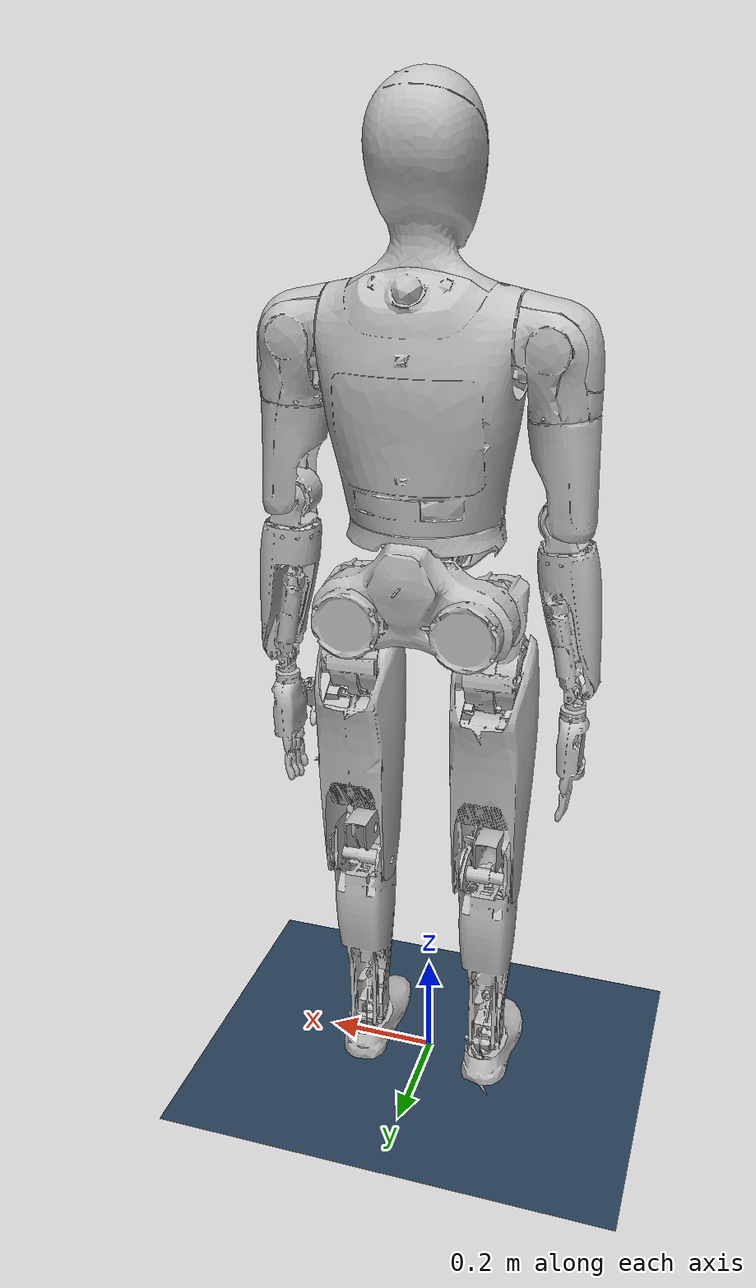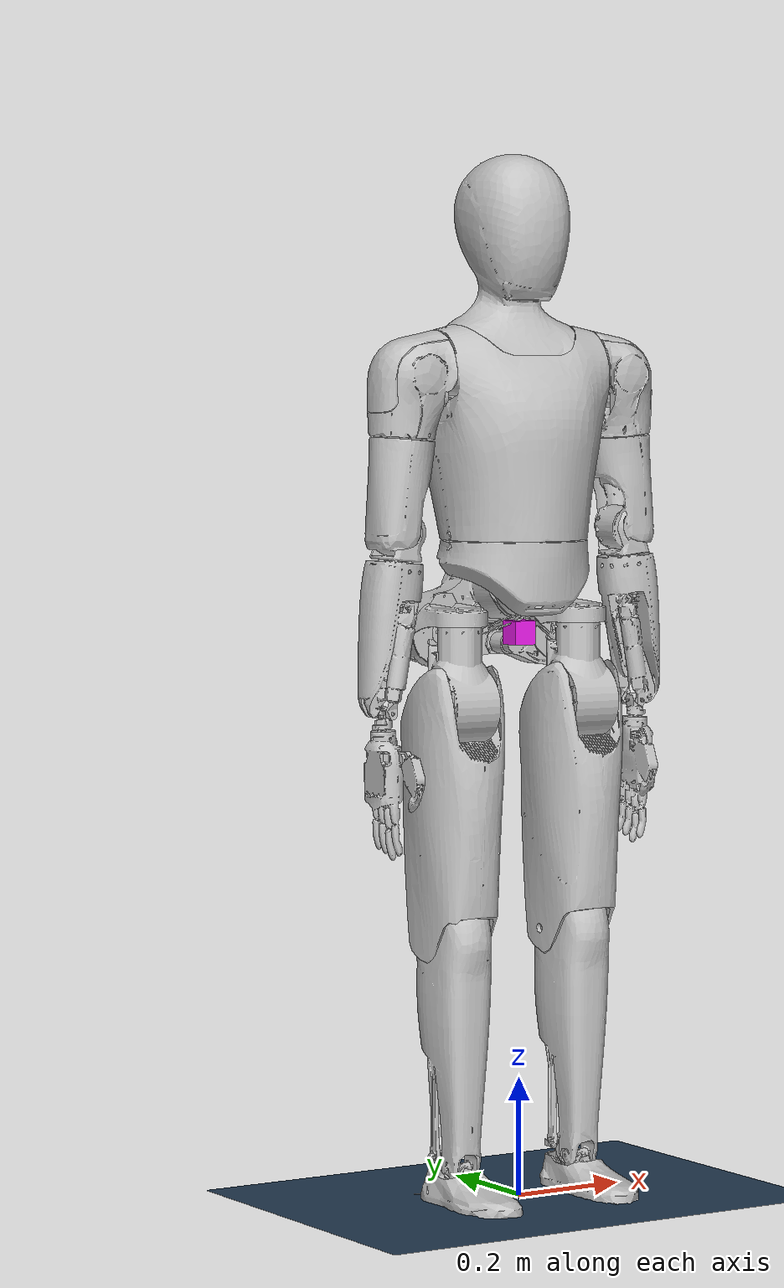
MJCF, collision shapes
<mujoco model="Magicbot-Gen1">
    <compiler angle="radian" meshdir="../meshes/" />
    <size njmax="500" nconmax="100" />
  <asset>
        <mesh name="pelvis" file="pelvis.STL" />
        <mesh name="LINK_HIP_ROLL_L" file="LINK_HIP_ROLL_L.STL" />
        <mesh name="LINK_HIP_YAW_L" file="LINK_HIP_YAW_L.STL" />
        <mesh name="LINK_HIP_PITCH_L" file="LINK_HIP_PITCH_L.STL" />
        <mesh name="LINK_KNEE_PITCH_L" file="LINK_KNEE_PITCH_L.STL" />
        <mesh name="LINK_ANKLE_PITCH_L" file="LINK_ANKLE_PITCH_L.STL" />
        <mesh name="LINK_ANKLE_ROLL_L" file="LINK_ANKLE_ROLL_L.STL" />
        <mesh name="LINK_HIP_ROLL_R" file="LINK_HIP_ROLL_R.STL" />
        <mesh name="LINK_HIP_YAW_R" file="LINK_HIP_YAW_R.STL" />
        <mesh name="LINK_HIP_PITCH_R" file="LINK_HIP_PITCH_R.STL" />
        <mesh name="LINK_KNEE_PITCH_R" file="LINK_KNEE_PITCH_R.STL" />
        <mesh name="LINK_ANKLE_PITCH_R" file="LINK_ANKLE_PITCH_R.STL" />
        <mesh name="LINK_ANKLE_ROLL_R" file="LINK_ANKLE_ROLL_R.STL" />
        <mesh name="link_wr" file="link_wr.STL" />
        <mesh name="link_wy" file="link_wy.STL" />
        <mesh name="link_hy" file="link_hy.STL" />
        <mesh name="link_hp" file="link_hp.STL" />
        <mesh name="link_la1" file="link_la1.STL" />
        <mesh name="link_la2" file="link_la2.STL" />
        <mesh name="link_la3" file="link_la3.STL" />
        <mesh name="link_la4" file="link_la4.STL" />
        <mesh name="link_la5" file="link_la5.STL" />
        <mesh name="link_la6" file="link_la6.STL" />
        <mesh name="link_la7" file="link_la7.STL" />
        <mesh name="link_ra1" file="link_ra1.STL" />
        <mesh name="link_ra2" file="link_ra2.STL" />
        <mesh name="link_ra3" file="link_ra3.STL" />
        <mesh name="link_ra4" file="link_ra4.STL" />
        <mesh name="link_ra5" file="link_ra5.STL" />
        <mesh name="link_ra6" file="link_ra6.STL" />
        <mesh name="link_ra7" file="link_ra7.STL" />
        <mesh name="logo_link" file="logo_link.STL" scale="1.5 1.5 1.5"/>
        <texture type="2d" name="groundplane" builtin="checker" mark="edge" rgb1="0.2 0.3 0.4" rgb2="0.1 0.2 0.3" markrgb="1 1 1" width="300" height="300"/>
        <material name="MatGnd" texture="groundplane" texuniform="true" texrepeat="5 5" reflectance="0.2"/>
  </asset>

    <option timestep="0.002"/>
    <visual>
        <map fogstart="2" fogend="30" force="0.02"/>
        <headlight diffuse="0.6 0.6 0.6" ambient="0.3 0.3 0.3" specular="0 0 0"/>
        <rgba haze="0.15 0.25 0.35 1" contactforce="1 0 0 0.8" com="1 0 0 0.8"/>
        <scale forcewidth="0.05" contactwidth="0.1" contactheight="0.1"/>
    </visual>
    <default>
        <site type="sphere" size="0.005" rgba="1 0 0 1"/>
        <joint damping="20"/>
        <geom contype="0" conaffinity="1" friction="1 1 1" margin="0.001" type="mesh" solref="-500 -800" />
    </default>

  <worldbody>

    <light name="spotlight" mode="trackcom" target="pelvis" pos="0 -0.2 2" dir="0 0 -1" directional="true" cutoff="30"/>
    <geom name="ground" type="plane" pos="0 0 0" friction="1 1 5" size="15 15 1" conaffinity="1" contype="1" material="MatGnd"/>

    <body name="pelvis" pos="0 0 0.95" quat="0.7071 0 0 -0.7071">
      <camera name="track" pos="0 -3 1" zaxis="0 -1 0.5" mode="track"/>
      <freejoint/>
      <inertial pos="-0.0867525 9.19e-06 0.012959" quat="0.670588 0.670525 0.224397 -0.224395" mass="6.32181" diaginertia="0.0866265 0.0823034 0.0198841"/>
      <geom type="mesh" contype="0" conaffinity="0" group="1" rgba="0.75294 0.75294 0.75294 1" mesh="pelvis"/>
      <geom type="mesh" rgba="0.75294 0.75294 0.75294 1" mesh="pelvis"/>
      <body name="LINK_HIP_ROLL_L" pos="0 0.1175 0">
        <inertial pos="-0.0307534 -3.55e-06 0.0214845" quat="2.72134e-06 0.528952 -2.59562e-05 0.848652" mass="0.47382" diaginertia="0.000912726 0.0007199 0.000528614"/>
        <joint name="JOINT_HIP_ROLL_L" pos="0 0 0" axis="1 0 0" limited="true" range="-0.349 0.523"/>
        <geom type="mesh" contype="0" conaffinity="0" group="1" rgba="0.75294 0.75294 0.75294 1" mesh="LINK_HIP_ROLL_L"/>
        <geom type="mesh" rgba="0.75294 0.75294 0.75294 1" mesh="LINK_HIP_ROLL_L"/>
        <body name="LINK_HIP_YAW_L" pos="0 0 0">
          <inertial pos="-0.00106248 -0.00273398 -0.0817245" quat="0.514355 0.484575 0.501153 0.499472" mass="3.38318" diaginertia="0.00742219 0.00742219 0.00742219"/>
          <joint name="JOINT_HIP_YAW_L" pos="0 0 0" axis="0 0 1" limited="true" range="-0.262 0.523"/>
          <geom type="mesh" contype="0" conaffinity="0" group="1" rgba="0.75294 0.75294 0.75294 1" mesh="LINK_HIP_YAW_L"/>
          <geom type="mesh" rgba="0.75294 0.75294 0.75294 1" mesh="LINK_HIP_YAW_L"/>
          <body name="LINK_HIP_PITCH_L" pos="0 0 -0.118">
            <inertial pos="-0.0129337 -0.00410579 -0.155921" quat="0.713768 0.0111618 0.0128312 0.700176" mass="5.04878" diaginertia="0.0569722 0.0545631 0.01567"/>
            <joint name="JOINT_HIP_PITCH_L" pos="0 0 0" axis="0 1 0" limited="true" range="-2.093 0.698"/>
            <geom type="mesh" contype="0" conaffinity="0" group="1" rgba="0.75294 0.75294 0.75294 1" mesh="LINK_HIP_PITCH_L"/>
            <geom type="mesh" rgba="0.75294 0.75294 0.75294 1" mesh="LINK_HIP_PITCH_L"/>
            <body name="LINK_KNEE_PITCH_L" pos="-0.03295 0 -0.3875">
              <inertial pos="0.0288334 0.00126447 -0.12048" quat="0.728342 -0.0188859 -0.0118525 0.684851" mass="3.37617" diaginertia="0.0487493 0.0484897 0.00486254"/>
              <joint name="JOINT_KNEE_PITCH_L" pos="0 0 0" axis="0 1 0" limited="true" range="0 2.617"/>
              <geom type="mesh" contype="0" conaffinity="0" group="1" rgba="0.75294 0.75294 0.75294 1" mesh="LINK_KNEE_PITCH_L"/>
              <geom type="mesh" rgba="0.75294 0.75294 0.75294 1" mesh="LINK_KNEE_PITCH_L"/>
              <body name="LINK_ANKLE_PITCH_L" pos="0.035056 0 -0.3867">
                <inertial pos="0 0 -0.00869504" quat="0.5 0.5 0.5 0.5" mass="0.0724143" diaginertia="1.156e-05 1.127e-05 1.073e-05"/>
                <joint name="JOINT_ANKLE_PITCH_L" pos="0 0 0" axis="0 1 0" limited="true" range="-1.308 0.523"/>
                <geom type="mesh" contype="0" conaffinity="0" group="1" rgba="0.75294 0.75294 0.75294 1" mesh="LINK_ANKLE_PITCH_L"/>
                <geom type="mesh" rgba="0.75294 0.75294 0.75294 1" mesh="LINK_ANKLE_PITCH_L"/>
                <body name="LINK_ANKLE_ROLL_L" pos="0 0 -0.01">
                  <inertial pos="0.0181629 0.00118755 -0.0261397" quat="0.0419233 0.749639 0.0481793 0.658758" mass="0.801308" diaginertia="0.0038524 0.00377511 0.000670562"/>
                  <joint name="JOINT_ANKLE_ROLL_L" pos="0 0 0" axis="1 0 0" limited="true" range="-0.349 0.349"/>
                  <geom type="mesh" contype="1" conaffinity="0" group="1" density="0" rgba="0.75294 0.75294 0.75294 1" mesh="LINK_ANKLE_ROLL_L" />
                  <geom type="mesh" rgba="0.75294 0.75294 0.75294 1" mesh="LINK_ANKLE_ROLL_L" />
                </body>
              </body>
            </body>
          </body>
        </body>
      </body>
      <body name="LINK_HIP_ROLL_R" pos="0 -0.1175 0">
        <inertial pos="-0.0307534 -3.59e-06 0.0214845" quat="2.72134e-06 0.528952 -2.59562e-05 0.848652" mass="0.473833" diaginertia="0.000912726 0.0007199 0.000528614"/>
        <joint name="JOINT_HIP_ROLL_R" pos="0 0 0" axis="1 0 0" limited="true" range="-0.523 0.349"/>
        <geom type="mesh" contype="0" conaffinity="0" group="1" rgba="0.75294 0.75294 0.75294 1" mesh="LINK_HIP_ROLL_R"/>
        <geom type="mesh" rgba="0.75294 0.75294 0.75294 1" mesh="LINK_HIP_ROLL_R"/>
        <body name="LINK_HIP_YAW_R" pos="0 0 0">
          <inertial pos="-0.00100961 0.00273909 -0.081705" quat="0.712797 0.0121854 -0.00794719 0.70122" mass="3.38317" diaginertia="0.0158115 0.0144407 0.00468985"/>
          <joint name="JOINT_HIP_YAW_R" pos="0 0 0" axis="0 0 1" limited="true" range="-0.523 0.262"/>
          <geom type="mesh" contype="0" conaffinity="0" group="1" rgba="0.75294 0.75294 0.75294 1" mesh="LINK_HIP_YAW_R"/>
          <geom type="mesh" rgba="0.75294 0.75294 0.75294 1" mesh="LINK_HIP_YAW_R"/>
          <body name="LINK_HIP_PITCH_R" pos="0 0 -0.118">
            <inertial pos="-0.0116084 0.00408093 -0.155398" quat="0.669095 0.00313739 0.00263166 0.743166" mass="5.04802" diaginertia="0.0553991 0.0538462 0.0147466"/>
            <joint name="JOINT_HIP_PITCH_R" pos="0 0 0" axis="0 1 0" limited="true" range="-2.093 0.698"/>
            <geom type="mesh" contype="0" conaffinity="0" group="1" rgba="0.75294 0.75294 0.75294 1" mesh="LINK_HIP_PITCH_R"/>
            <geom type="mesh" rgba="0.75294 0.75294 0.75294 1" mesh="LINK_HIP_PITCH_R"/>
            <body name="LINK_KNEE_PITCH_R" pos="-0.032951 0 -0.3875">
              <inertial pos="0.0288152 -0.00126424 -0.120528" quat="0.682853 -0.0118312 -0.0188198 0.730218" mass="3.37419" diaginertia="0.0487347 0.0484735 0.00486017"/>
              <joint name="JOINT_KNEE_PITCH_R" pos="0 0 0" axis="0 1 0" limited="true" range="0 2.617"/>
              <geom type="mesh" contype="0" conaffinity="0" group="1" rgba="0.75294 0.75294 0.75294 1" mesh="LINK_KNEE_PITCH_R"/>
              <geom type="mesh" rgba="0.75294 0.75294 0.75294 1" mesh="LINK_KNEE_PITCH_R"/>
              <body name="LINK_ANKLE_PITCH_R" pos="0.035003 0 -0.3867">
                <inertial pos="-1.27e-06 -4.51e-06 -0.00869518" quat="0.5 0.5 0.5 0.5" mass="0.0724143" diaginertia="1.156e-05 1.127e-05 1.073e-05"/>
                <joint name="JOINT_ANKLE_PITCH_R" pos="0 0 0" axis="0 1 0" limited="true" range="-1.308 0.523"/>
                <geom type="mesh" contype="0" conaffinity="0" group="1" rgba="0.75294 0.75294 0.75294 1" mesh="LINK_ANKLE_PITCH_R"/>
                <geom type="mesh" rgba="0.75294 0.75294 0.75294 1" mesh="LINK_ANKLE_PITCH_R"/>
                <body name="LINK_ANKLE_ROLL_R" pos="0 0 -0.01" quat="1 2.0446e-05 7.4275e-05 -1.51863e-09">
                  <inertial pos="0.0173464 -0.00124434 -0.0259356" quat="-0.046951 0.749545 -0.0530177 0.658154" mass="0.794245" diaginertia="0.00374197 0.00366589 0.000665126"/>
                  <joint name="JOINT_ANKLE_ROLL_R" pos="0 0 0" axis="1 0 0" limited="true" range="-0.349 0.349"/>
                  <geom type="mesh" contype="1" conaffinity="0" group="1" density="0" rgba="0.75294 0.75294 0.75294 1" mesh="LINK_ANKLE_ROLL_R" />
                  <geom type="mesh" rgba="0.75294 0.75294 0.75294 1" mesh="LINK_ANKLE_ROLL_R" />
                </body>
              </body>
            </body>
          </body>
        </body>
      </body>
      <body name="link_wr" pos="-0.016 0 0.083">
        <inertial pos="-0.0147638 -5.405e-05 0.0105922" quat="-0.000109426 0.683045 -0.00243717 0.730372" mass="2.52448" diaginertia="0.0121018 0.0104746 0.00532311"/>
        <joint name="joint_wr" pos="0 0 0" axis="1 0 0" limited="true" range="-0.349 0.349"/>
        <geom type="mesh" contype="0" conaffinity="0" group="1" rgba="0.75294 0.75294 0.75294 1" mesh="link_wr"/>
        <geom type="mesh" rgba="0.75294 0.75294 0.75294 1" mesh="link_wr"/>
        <body name="link_wy" pos="0 0 0">
          <inertial pos="-0.0166852 -0.00085362 0.246658" quat="0.999581 -0.0157744 -0.0242877 -0.000132519" mass="15.0078" diaginertia="0.200739 0.152509 0.107974"/>
          <joint name="joint_wy" pos="0 0 0" axis="0 0 1" limited="true" range="-1.57 1.57"/>
          <geom type="mesh" contype="0" conaffinity="0" group="1" rgba="0.75294 0.75294 0.75294 1" mesh="link_wy"/>
          <geom type="mesh" rgba="0.75294 0.75294 0.75294 1" mesh="link_wy"/>
          <body name="logo_link" pos="-0.042 0 -0.272">
            <geom type="mesh" mesh="logo_link" rgba="0.5 0.5 0.5 1" contype="0" conaffinity="0"/>
          </body>
          <body name="link_hy" pos="-0.0059657 0 0.50108">
            <inertial pos="-0.00331412 0.00160025 -0.0664507" quat="0.661612 -0.0307511 -0.00798009 0.749173" mass="1.30579" diaginertia="0.00617406 0.00611049 0.000873257"/>
            <joint name="joint_hy" pos="0 0 0" axis="0 0 1" limited="true" range="-1.047 1.047"/>
            <geom type="mesh" contype="0" conaffinity="0" group="1" rgba="0.75294 0.75294 0.75294 1" mesh="link_hy"/>
            <geom type="mesh" rgba="0.75294 0.75294 0.75294 1" mesh="link_hy"/>
            <body name="link_hp" pos="-0.0065 2.3658e-05 0">
              <inertial pos="0.0195701 0.00043733 0.0836034" quat="0.702022 -0.158171 -0.151978 0.677532" mass="1.75103" diaginertia="0.0100446 0.0088459 0.00620297"/>
              <joint name="joint_hp" pos="0 0 0" axis="0 1 0" limited="true" range="-0.349 0.349"/>
              <geom type="mesh" contype="0" conaffinity="0" group="1" rgba="0.75294 0.75294 0.75294 1" mesh="link_hp"/>
              <geom type="mesh" rgba="0.75294 0.75294 0.75294 1" mesh="link_hp"/>
            </body>
          </body>
          <body name="link_la1" pos="-0.0078982 0.19799 0.346">
            <inertial pos="-0.0018413 -0.0024301 -0.00037468" quat="0.15371 0.690422 0.16086 0.688342" mass="1.4531" diaginertia="0.0020206 0.00193611 0.00186519" />
            <joint name="joint_la1" pos="0 0 0" axis="0 1 0" limited="true" range="-2.756 2.756" />
            <geom type="mesh" contype="0" conaffinity="0" group="1" rgba="0.75294 0.75294 0.75294 1" mesh="link_la1" />
            <geom type="mesh" rgba="0.75294 0.75294 0.75294 1" mesh="link_la1" />
            <body name="link_la2" pos="0 0 0">
              <inertial pos="-0.00019279 0.0045265 -0.044564" quat="0.704732 0.0647842 -0.0936079 0.700281" mass="0.53748" diaginertia="0.00256775 0.00180145 0.0016529" />
              <joint name="joint_la2" pos="0 0 0" axis="1 0 0" limited="true" range="-0.262 2.878" />
              <geom type="mesh" contype="0" conaffinity="0" group="1" rgba="0.75294 0.75294 0.75294 1" mesh="link_la2" />
              <geom type="mesh" rgba="0.75294 0.75294 0.75294 1" mesh="link_la2" />
              <body name="link_la3" pos="0 0.015686 -0.10553" quat="0.999048 0.0436197 0 0">
                <inertial pos="-0.0018654 -0.00021946 -0.087638" quat="0.44763 0.00922475 0.0230775 0.893874" mass="1.784" diaginertia="0.00747334 0.00745552 0.00171994" />
                <joint name="joint_la3" pos="0 0 0" axis="0 0 1" limited="true" range="-2.617 2.617" />
                <geom type="mesh" contype="0" conaffinity="0" group="1" rgba="0.75294 0.75294 0.75294 1" mesh="link_la3" />
                <geom type="mesh" rgba="0.75294 0.75294 0.75294 1" mesh="link_la3" />
                <body name="link_la4" pos="-0.00074295 -0.0049956 -0.15199" quat="1 -9.13831e-05 7.78022e-05 -2.43794e-05">
                  <inertial pos="-0.0013088 0.00091464 0.02382" quat="0.466806 0.512617 0.540895 0.476181" mass="0.17421" diaginertia="0.000270023 0.000224184 0.000140403" />
                  <joint name="joint_la4" pos="0 0 0" axis="1 0 0" limited="true" range="-2.215 0.174" />
                  <geom type="mesh" contype="0" conaffinity="0" group="1" rgba="0.75294 0.75294 0.75294 1" mesh="link_la4" />
                  <geom type="mesh" rgba="0.75294 0.75294 0.75294 1" mesh="link_la4" />
                  <body name="link_la5" pos="0 0 0">
                    <inertial pos="3.761e-05 -0.00071947 -0.15533" quat="0.707151 0.00668923 -0.00641691 0.707001" mass="1.9293" diaginertia="0.0127798 0.012532 0.00174851" />
                    <joint name="joint_la5" pos="0 0 0" axis="0 0 1" limited="true" range="-2.913 2.913" />
                    <geom type="mesh" contype="0" conaffinity="0" group="1" rgba="0.75294 0.75294 0.75294 1" mesh="link_la5" />
                    <geom type="mesh" rgba="0.75294 0.75294 0.75294 1" mesh="link_la5" />
                    <body name="link_la6" pos="0 0.02371 -0.29785">
                      <inertial pos="0 -0.010485 -1.319e-05" quat="0.5 0.5 -0.5 0.5" mass="0.022425" diaginertia="2.68e-06 2.56e-06 4.1e-07" />
                      <joint name="joint_la6" pos="0 0 0" axis="1 0 0" limited="true" range="-1.099 0.855" />
                      <geom type="mesh" contype="0" conaffinity="0" group="1" rgba="0.75294 0.75294 0.75294 1" mesh="link_la6" />
                      <geom type="mesh" rgba="0.75294 0.75294 0.75294 1" mesh="link_la6" />
                      <body name="link_la7" pos="0 0 0">
                        <inertial pos="0.0085985 -0.033148 -0.099979" quat="0.759901 -0.0561444 0.0132593 0.647474" mass="0.69533" diaginertia="0.00276053 0.0023263 0.000593638" />
                        <joint name="joint_la7" pos="0 0 0" axis="0 1 0" limited="true" range="-0.454 0.454" />
                        <geom type="mesh" contype="0" conaffinity="0" group="1" rgba="0.75294 0.75294 0.75294 1" mesh="link_la7" />
                        <geom type="mesh" rgba="0.75294 0.75294 0.75294 1" mesh="link_la7" />
                      </body>
                    </body>
                  </body>
                </body>
              </body>
            </body>
          </body>
          <body name="link_ra1" pos="-0.0079 -0.198 0.346">
            <inertial pos="0.0018431 0.0024301 -0.00037468" quat="-0.16086 0.688342 -0.15371 0.690422" mass="1.4531" diaginertia="0.0020206 0.00193611 0.00186519" />
            <joint name="joint_ra1" pos="0 0 0" axis="0 1 0" limited="true" range="-2.756 2.756" />
            <geom type="mesh" contype="0" conaffinity="0" group="1" rgba="0.75294 0.75294 0.75294 1" mesh="link_ra1" />
            <geom type="mesh" rgba="0.75294 0.75294 0.75294 1" mesh="link_ra1" />
            <body name="link_ra2" pos="0 0 0">
              <inertial pos="0.00019469 -0.0045264 -0.044564" quat="0.704725 -0.0648014 0.0935909 0.700289" mass="0.53748" diaginertia="0.00256775 0.00180145 0.00165291" />
              <joint name="joint_ra2" pos="0 0 0" axis="1 0 0" limited="true" range="-2.878 0.262" />
              <geom type="mesh" contype="0" conaffinity="0" group="1" rgba="0.75294 0.75294 0.75294 1" mesh="link_ra2" />
              <geom type="mesh" rgba="0.75294 0.75294 0.75294 1" mesh="link_ra2" />
              <body name="link_ra3" pos="1.2039e-05 -0.015686 -0.10553" quat="0.999048 -0.0436197 0 0">
                <inertial pos="0.0018654 0.00021946 -0.087638" quat="0.44763 -0.00922475 -0.0230775 0.893874" mass="1.784" diaginertia="0.00747334 0.00745552 0.00171994" />
                <joint name="joint_ra3" pos="0 0 0" axis="0 0 1" limited="true" range="-2.617 2.617" />
                <geom type="mesh" contype="0" conaffinity="0" group="1" rgba="0.75294 0.75294 0.75294 1" mesh="link_ra3" />
                <geom type="mesh" rgba="0.75294 0.75294 0.75294 1" mesh="link_ra3" />
                <body name="link_ra4" pos="0.00074295 0.0049956 -0.15199" quat="1 9.13831e-05 -7.78022e-05 -2.43794e-05">
                  <inertial pos="0.0013088 -0.00091464 -0.02382" quat="0.512617 0.466806 0.476181 0.540895" mass="0.17421" diaginertia="0.000270023 0.000224184 0.000140403" />
                  <joint name="joint_ra4" pos="0 0 0" axis="1 0 0" limited="true" range="-0.174 2.215" />
                  <geom type="mesh" contype="0" conaffinity="0" group="1" rgba="0.75294 0.75294 0.75294 1" mesh="link_ra4" />
                  <geom type="mesh" rgba="0.75294 0.75294 0.75294 1" mesh="link_ra4" />
                  <body name="link_ra5" pos="0 0 0">
                    <inertial pos="-3.761e-05 0.00071947 -0.15533" quat="0.707151 -0.00668923 0.00641691 0.707001" mass="1.9293" diaginertia="0.0127798 0.012532 0.00174851" />
                    <joint name="joint_ra5" pos="0 0 0" axis="0 0 1" limited="true" range="-2.913 2.913" />
                    <geom type="mesh" contype="0" conaffinity="0" group="1" rgba="0.75294 0.75294 0.75294 1" mesh="link_ra5" />
                    <geom type="mesh" rgba="0.75294 0.75294 0.75294 1" mesh="link_ra5" />
                    <body name="link_ra6" pos="0 -0.02371 -0.29785">
                      <inertial pos="0 0.010485 -1.319e-05" quat="0.5 0.5 -0.5 0.5" mass="0.022425" diaginertia="2.68e-06 2.56e-06 4.1e-07" />
                      <joint name="joint_ra6" pos="0 0 0" axis="1 0 0" limited="true" range="-0.855 1.099" />
                      <geom type="mesh" contype="0" conaffinity="0" group="1" rgba="0.75294 0.75294 0.75294 1" mesh="link_ra6" />
                      <geom type="mesh" rgba="0.75294 0.75294 0.75294 1" mesh="link_ra6" />
                      <body name="link_ra7" pos="0 0 0">
                        <inertial pos="0.0086988 0.034138 -0.10144" quat="0.650361 0.0146057 -0.05436 0.757537" mass="0.69533" diaginertia="0.00282555 0.00237836 0.000592839" />
                        <joint name="joint_ra7" pos="0 0 0" axis="0 1 0" limited="true" range="-0.454 0.454" />
                        <geom type="mesh" contype="0" conaffinity="0" group="1" rgba="0.75294 0.75294 0.75294 1" mesh="link_ra7" />
                        <geom type="mesh" rgba="0.75294 0.75294 0.75294 1" mesh="link_ra7" />
                      </body>
                    </body>
                  </body>
                </body>
              </body>
            </body>
          </body>
        </body>
      </body>

        <!-- imu at body base -->
        <body name="imu_link_at_pelvis" pos="0 0 0">
            <inertial pos="0 0 0" mass="0.1" diaginertia="0.000001 0.000001 0.000001" />
            <geom name="imu_link" size="0.01 0.01 0.01" pos="0 0 0" type="box" />
            <site name="imu_sensor_at_pelvis" type="box" pos="0 0 0" size=".02 .02 .02" rgba=".9 .1 .9 1"/>
        </body>

    </body>
  </worldbody>

    <actuator>
    <motor name="left_hip_roll_actuator" joint="JOINT_HIP_ROLL_L"/>
    <motor name="left_hip_yaw_actuator" joint="JOINT_HIP_YAW_L"/>
    <motor name="left_hip_pitch_actuator" joint="JOINT_HIP_PITCH_L"/>
    <motor name="left_knee_actuator" joint="JOINT_KNEE_PITCH_L"/>
    <motor name="left_ankle_pitch_actuator" joint="JOINT_ANKLE_PITCH_L"/>
    <motor name="left_ankle_roll_actuator" joint="JOINT_ANKLE_ROLL_L"/>

    <motor name="right_hip_roll_actuator" joint="JOINT_HIP_ROLL_R"/>
    <motor name="right_hip_yaw_actuator" joint="JOINT_HIP_YAW_R"/>
    <motor name="right_hip_pitch_actuator" joint="JOINT_HIP_PITCH_R"/>
    <motor name="right_knee_actuator" joint="JOINT_KNEE_PITCH_R"/>
    <motor name="right_ankle_pitch_actuator" joint="JOINT_ANKLE_PITCH_R"/>
    <motor name="right_ankle_roll_actuator" joint="JOINT_ANKLE_ROLL_R"/>

    <motor name="wrist_roll_actuator" joint="joint_wr"/>
    <motor name="wrist_yaw_actuator" joint="joint_wy"/>

    <motor name="head_yaw_actuator" joint="joint_hy"/>
    <motor name="head_pitch_actuator" joint="joint_hp"/>

    <motor name="left_shoulder_pitch_actuator" joint="joint_la1"/>
    <motor name="left_shoulder_roll_actuator" joint="joint_la2"/>
    <motor name="left_shoulder_yaw_actuator" joint="joint_la3"/>
    <motor name="left_elbow_actuator" joint="joint_la4"/>
    <motor name="left_hand_yaw_actuator" joint="joint_la5"/>
    <motor name="left_hand_roll_actuator" joint="joint_la6"/>
    <motor name="left_hand_pitch_actuator" joint="joint_la7"/>

    <motor name="right_shoulder_pitch_actuator" joint="joint_ra1"/>
    <motor name="right_shoulder_roll_actuator" joint="joint_ra2"/>
    <motor name="right_shoulder_yaw_actuator" joint="joint_ra3"/>
    <motor name="right_elbow_actuator" joint="joint_ra4"/>
    <motor name="right_hand_yaw_actuator" joint="joint_ra5"/>
    <motor name="right_hand_roll_actuator" joint="joint_ra6"/>
    <motor name="right_hand_pitch_actuator" joint="joint_ra7"/>

  </actuator>

    <sensor>
        <accelerometer name="imu_local_acc_at_pelvis" site="imu_sensor_at_pelvis"/>
        <gyro name="imu_local_gyro_at_pelvis" site="imu_sensor_at_pelvis"/>
    </sensor>

</mujoco>
